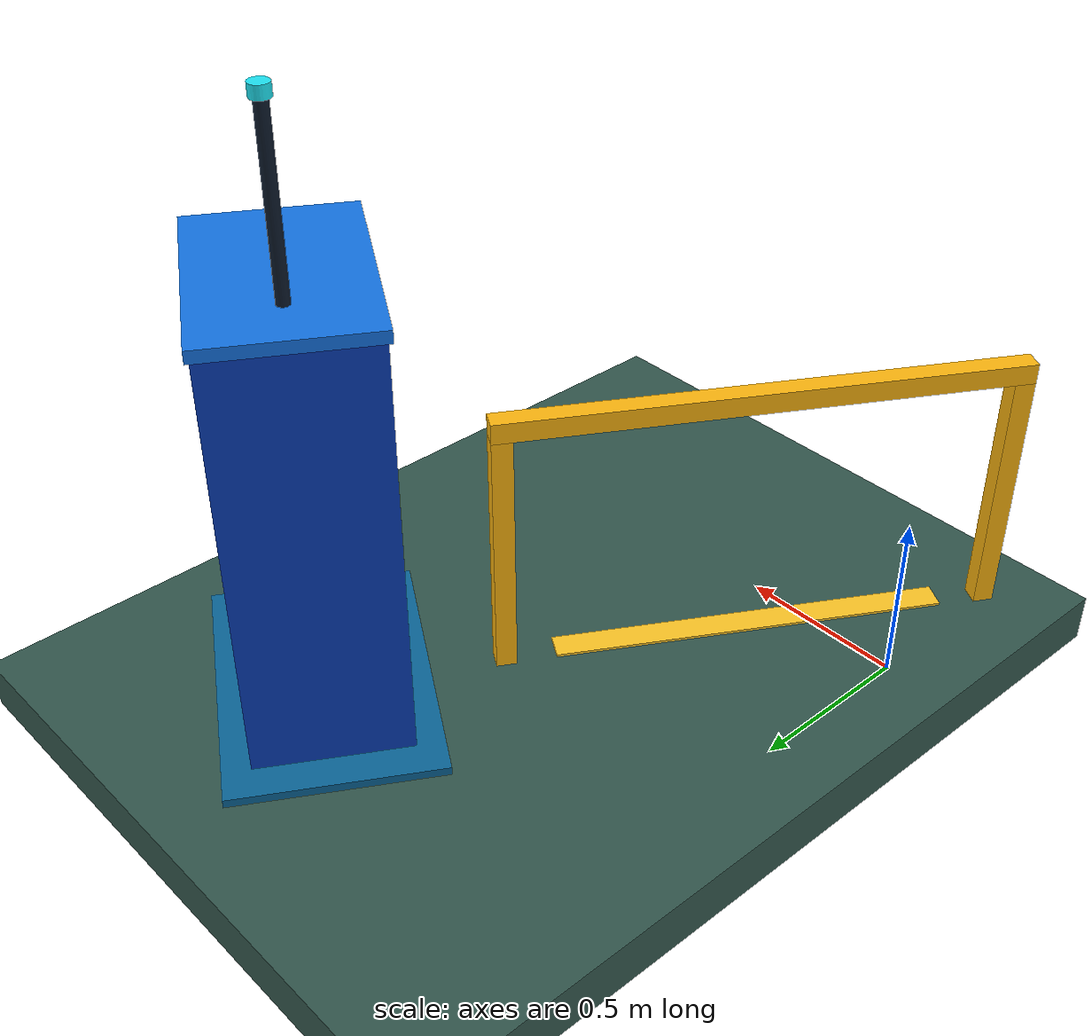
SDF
<sdf version="1.9">
 <world name="monaco">
  <model name="ground">
   <static>true</static>
   <link name="body">
    <visual name="ground">
     <pose>0 0 -0.08 0 0 0</pose>
     <geometry><box><size>100 100 0.15</size></box></geometry>
     <material><ambient>0.20 0.34 0.30 1</ambient><diffuse>0.20 0.34 0.30 1</diffuse></material>
    </visual>
    <collision name="ground_collision">
     <pose>0 0 -0.08 0 0 0</pose>
     <geometry><box><size>100 100 0.15</size></box></geometry>
    </collision>
   </link>
  </model>
  <model name="checkpoint_02">
   <static>true</static>
   <pose>0.3970749353191618 0.15502530970397027 0 0 0 -0.5307734972029063</pose>
   <link name="body">
    <visual name="stripe">
     <pose>0 0 0.016 0 0 0</pose>
     <geometry><box><size>0.08 1.17 0.008</size></box></geometry>
     <material><ambient>1 0.78 0.15 1</ambient><diffuse>1 0.78 0.15 1</diffuse></material>
    </visual>
    <visual name="post_-1">
     <pose>0 -0.73 0.38 0 0 0</pose>
     <geometry><box><size>0.06 0.06 0.76</size></box></geometry>
     <material><ambient>1 0.72 0.06 1</ambient><diffuse>1 0.72 0.06 1</diffuse></material>
    </visual>
    <visual name="post_1">
     <pose>0 0.73 0.38 0 0 0</pose>
     <geometry><box><size>0.06 0.06 0.76</size></box></geometry>
     <material><ambient>1 0.72 0.06 1</ambient><diffuse>1 0.72 0.06 1</diffuse></material>
    </visual>
    <visual name="overhead">
     <pose>0 0 0.79 0 0 0</pose>
     <geometry><box><size>0.06 1.52 0.06</size></box></geometry>
     <material><ambient>1 0.72 0.06 1</ambient><diffuse>1 0.72 0.06 1</diffuse></material>
    </visual>
   </link>
  </model>
  <model name="edge_02">
   <static>true</static>
   <pose>1.0298256462744404 1.2330450394796313 0 0 0 -0.5307734972029063</pose>
   <link name="body">
    <collision name="chassis_collision">
     <pose>0 0 0.14 0 0 0</pose>
     <geometry><box><size>0.64 0.32 0.13</size></box></geometry>
    </collision>
    <visual name="parking_bay">
     <pose>0 0 0.012 0 0 0</pose>
     <geometry><box><size>0.86 0.60 0.025</size></box></geometry>
     <material><ambient>0.04 0.40 0.60 1</ambient><diffuse>0.04 0.40 0.60 1</diffuse></material>
    </visual>
    <visual name="server_cabinet">
     <pose>0 0 0.65 0 0 0</pose>
     <geometry><box><size>0.66 0.44 1.25</size></box></geometry>
     <material><ambient>0.035 0.24 0.72 1</ambient><diffuse>0.035 0.24 0.72 1</diffuse></material>
    </visual>
    <visual name="cabinet_top">
     <pose>0 0 1.285 0 0 0</pose>
     <geometry><box><size>0.68 0.46 0.035</size></box></geometry>
     <material><ambient>0.08 0.46 0.90 1</ambient><diffuse>0.08 0.46 0.90 1</diffuse></material>
    </visual>
    <visual name="front_panel">
     <pose>0.337 0 0.73 0 0 0</pose>
     <geometry><box><size>0.014 0.34 0.82</size></box></geometry>
     <material><ambient>0.025 0.075 0.14 1</ambient><diffuse>0.025 0.075 0.14 1</diffuse></material>
    </visual>
    <visual name="rack_slot_0">
     <pose>0.347 0 0.47 0 0 0</pose>
     <geometry><box><size>0.012 0.29 0.045</size></box></geometry>
     <material><ambient>0.11 0.38 0.62 1</ambient><diffuse>0.11 0.38 0.62 1</diffuse></material>
    </visual>
    <visual name="rack_slot_1">
     <pose>0.347 0 0.64 0 0 0</pose>
     <geometry><box><size>0.012 0.29 0.045</size></box></geometry>
     <material><ambient>0.11 0.38 0.62 1</ambient><diffuse>0.11 0.38 0.62 1</diffuse></material>
    </visual>
    <visual name="rack_slot_2">
     <pose>0.347 0 0.81 0 0 0</pose>
     <geometry><box><size>0.012 0.29 0.045</size></box></geometry>
     <material><ambient>0.11 0.38 0.62 1</ambient><diffuse>0.11 0.38 0.62 1</diffuse></material>
    </visual>
    <visual name="rack_slot_3">
     <pose>0.347 0 0.98 0 0 0</pose>
     <geometry><box><size>0.012 0.29 0.045</size></box></geometry>
     <material><ambient>0.11 0.38 0.62 1</ambient><diffuse>0.11 0.38 0.62 1</diffuse></material>
    </visual>
    <visual name="status_light">
     <pose>0.347 -0.10 1.08 0 0 0</pose>
     <geometry><box><size>0.015 0.035 0.035</size></box></geometry>
     <material><ambient>0.10 0.95 0.80 1</ambient><diffuse>0.10 0.95 0.80 1</diffuse></material>
    </visual>
    <visual name="antenna">
     <pose>-0.17 0 1.55 0 0 0</pose>
     <geometry><cylinder><radius>0.018</radius><length>0.5</length></cylinder></geometry>
     <material><ambient>0.05 0.10 0.17 1</ambient><diffuse>0.05 0.10 0.17 1</diffuse></material>
    </visual>
    <visual name="antenna_tip">
     <pose>-0.17 0 1.81 0 0 0</pose>
     <geometry><cylinder><radius>0.027</radius><length>0.035</length></cylinder></geometry>
     <material><ambient>0.12 0.90 0.96 1</ambient><diffuse>0.12 0.90 0.96 1</diffuse></material>
    </visual>
   </link>
  </model>
 </world>
</sdf>
